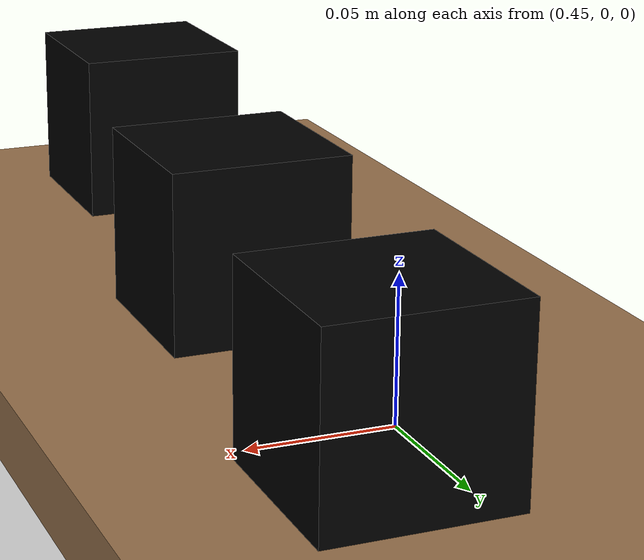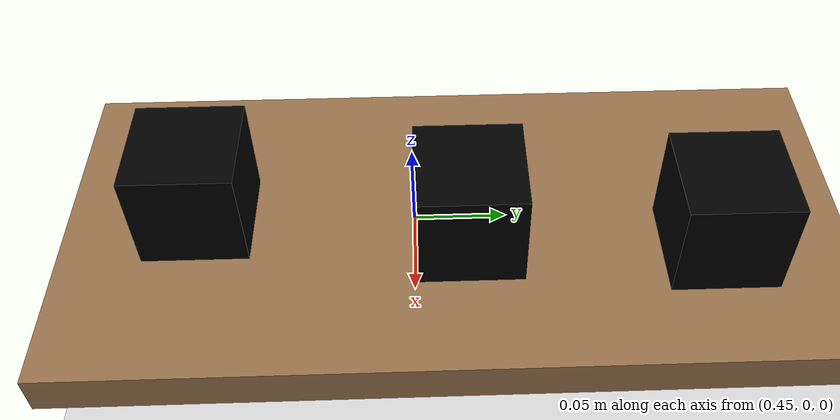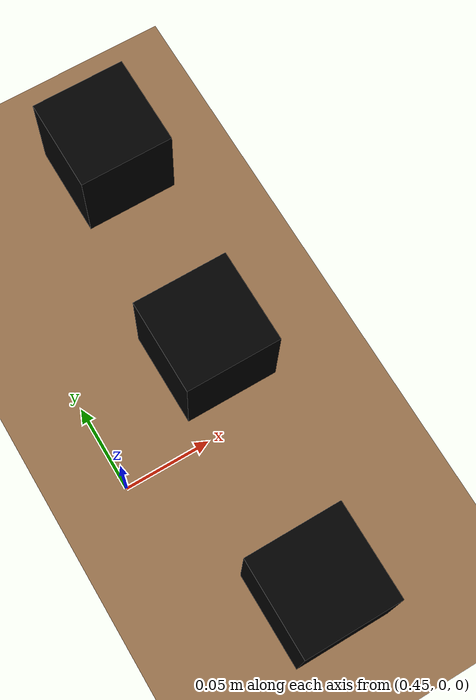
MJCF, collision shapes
<mujoco model="stack_color_blocks_gs">
  <compiler meshdir="../../../meshes"/>

  <visual>
    <map znear="0.001"/>
  </visual>

  <asset>
    <!-- meshdir resolved to assets/meshes/ via robotiq.xml compiler -->
    <mesh name="cube_blue_mesh"   file="stack_color_blocks/blue_plastic_cube/blue_plastic_cube.obj"/>
    <mesh name="cube_yellow_mesh" file="stack_color_blocks/yellow_plastic_cube/yellow_plastic_cube.obj"/>
    <mesh name="cube_orange_mesh" file="stack_color_blocks/orange_plastic_cube/orange_plastic_cube.obj"/>

    <material name="cube_blue_mat"   rgba="0.10 0.35 0.95 1" reflectance="0.2"/>
    <material name="cube_yellow_mat" rgba="0.95 0.85 0.10 1" reflectance="0.2"/>
    <material name="cube_orange_mat" rgba="0.95 0.55 0.10 1" reflectance="0.2"/>
  </asset>

  <worldbody>
    <light name="demo_light" pos="0 0 1.5" dir="0 0 -1"/>
    <geom name="floor" type="plane" size="2 2 0.1" rgba="0.85 0.85 0.85 1"/>

    <geom name="table" pos="0.45 0.06 0.044" size="0.33 0.525 0.01" type="box"
          contype="1" conaffinity="1" rgba="0.6 0.45 0.3 1"/>

    <!-- CUBE BLUE -->
    <body name="cube_blue_gs" pos="0.497741 -0.100448 0.0791">
      <freejoint name="cube_blue_joint"/>
      <body name="cube_blue" pos="0 0 0">
        <geom name="cube_blue_col" type="box" size="0.025 0.025 0.025"
              mass="0.005" friction="1.2 0.05 0.01"
              rgba="0 0 0 0" contype="1" conaffinity="1"/>
        <geom name="cube_blue_vis" type="mesh" mesh="cube_blue_mesh" material="cube_blue_mat"
              density="0"
              contype="0" conaffinity="0" group="1"/>
        <site name="cube_blue_site" pos="0 0 0" size="0.004" rgba="1 0 0 0"/>
      </body>
    </body>

    <!-- CUBE YELLOW -->
    <body name="cube_yellow_gs" pos="0.5145 0.0267 0.0791">
      <freejoint name="cube_yellow_joint"/>
      <body name="cube_yellow" pos="0 0 0">
        <geom name="cube_yellow_col" type="box" size="0.025 0.025 0.025"
              mass="0.005" friction="1.2 0.05 0.01"
              rgba="0 0 0 0" contype="1" conaffinity="1"/>
        <geom name="cube_yellow_vis" type="mesh" mesh="cube_yellow_mesh" material="cube_yellow_mat"
              density="0"
              contype="0" conaffinity="0" group="1"/>
        <site name="cube_yellow_site" pos="0 0 0" size="0.004" rgba="1 0 0 0"/>
      </body>
    </body>

    <!-- CUBE ORANGE -->
    <body name="cube_orange_gs" pos="0.523 0.1418 0.0791">
      <freejoint name="cube_orange_joint"/>
      <body name="cube_orange" pos="0 0 0">
        <geom name="cube_orange_col" type="box" size="0.025 0.025 0.025"
              mass="0.005" friction="1.2 0.05 0.01"
              rgba="0 0 0 0" contype="1" conaffinity="1"/>
        <geom name="cube_orange_vis" type="mesh" mesh="cube_orange_mesh" material="cube_orange_mat"
              density="0"
              contype="0" conaffinity="0" group="1"/>
        <site name="cube_orange_site" pos="0 0 0" size="0.004" rgba="1 0 0 0"/>
      </body>
    </body>

    <!-- Camera matching background GS coordinate frame (table30_02_stack_color_blocks) -->
    <camera name="env1_cam" pos="1.070 0.029 0.747"
            xyaxes="-0.109 0.993 0.038 -0.659 -0.101 0.745" fovy="43.36"/>
    <camera name="env0_cam" pos="0.488 1.0 0.6"
            xyaxes="-0.9994 0.0338 0.0000 -0.0107 -0.3168 0.9484" fovy="43.36"/>
  </worldbody>

</mujoco>
